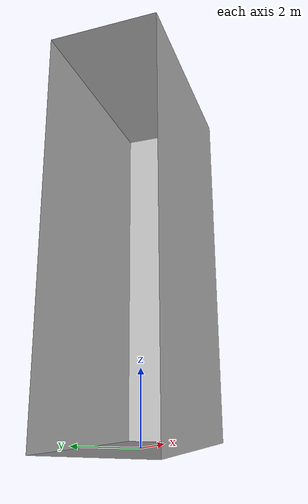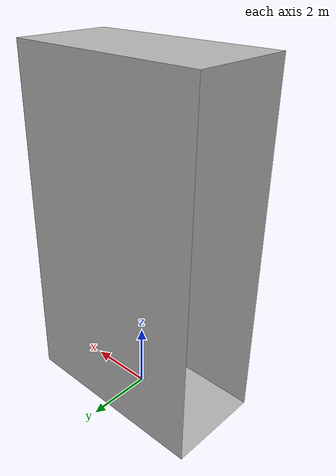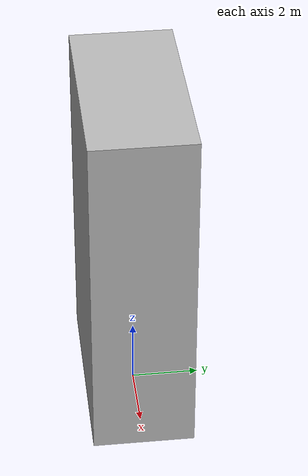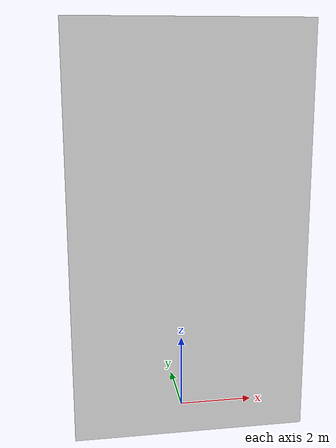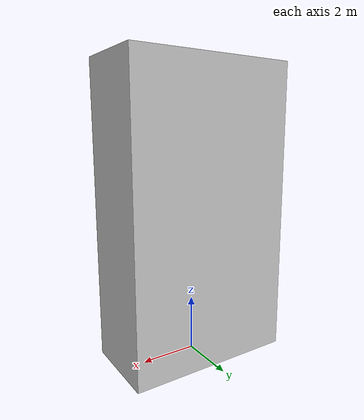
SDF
<?xml version="1.0" ?>
<sdf version="1.5">
  <model name="stair_cover_box">

    <include>
      <name>b1</name>
      <pose>0 -1.5 5.25 -1.5708 1.5708 0</pose>
      <uri>model://stair_cover_one</uri>
    </include>
    <include>
      <name>b2</name>
      <pose>0 1.5 5.25 -1.5708 1.5708 -3.141592</pose>
      <uri>model://stair_cover_one</uri>
    </include>
    <include>
      <name>b3</name>
      <pose>3 0 5.25 0 1.5708 3.141592</pose>
      <uri>model://stair_cover_two</uri>
    </include>
    <include>
      <name>b4</name>
      <pose>0 0 10.5 3.141592 0 0</pose>
      <uri>model://stair_cover_three</uri>
    </include>
    <include>
      <name>b5</name>
      <pose>0 0 0 0 0 0</pose>
      <uri>model://stair_cover_three</uri>
    </include>

  </model>
</sdf>

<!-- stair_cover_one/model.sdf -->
<sdf version="1.5">
  <model name="stair_cover_one">
    <static>true</static>
    <pose>0 0 0 0 0 0</pose>
    <link name="link">
      <collision name="collision">
        <geometry>
          <mesh>
            <uri>model://stair_cover_one/untitled.dae</uri>
          </mesh>
        </geometry>
      </collision>
      <visual name="visual">
        <cast_shadows>false</cast_shadows>
        <geometry>
          <mesh>
            <uri>model://stair_cover_one/untitled.dae</uri>
          </mesh>
        </geometry>
      </visual>
    </link>
  </model>
</sdf>

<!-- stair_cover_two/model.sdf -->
<sdf version="1.5">
  <model name="stair_cover_two">
    <static>true</static>
    <pose>0 0 0 0 0 0</pose>
    <link name="link">
      <collision name="collision">
        <geometry>
          <mesh>
            <uri>model://stair_cover_two/untitled.dae</uri>
          </mesh>
        </geometry>
      </collision>
      <visual name="visual">
        <cast_shadows>false</cast_shadows>
        <geometry>
          <mesh>
            <uri>model://stair_cover_two/untitled.dae</uri>
          </mesh>
        </geometry>
      </visual>
    </link>
  </model>
</sdf>

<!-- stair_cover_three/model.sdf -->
<sdf version="1.5">
  <model name="stair_cover_three">
    <static>true</static>
    <pose>0 0 0 0 0 0</pose>
    <link name="link">
      <collision name="collision">
        <geometry>
          <mesh>
            <uri>model://stair_cover_three/untitled.dae</uri>
          </mesh>
        </geometry>
      </collision>
      <visual name="visual">
        <cast_shadows>false</cast_shadows>
        <geometry>
          <mesh>
            <uri>model://stair_cover_three/untitled.dae</uri>
          </mesh>
        </geometry>
      </visual>
    </link>
  </model>
</sdf>
